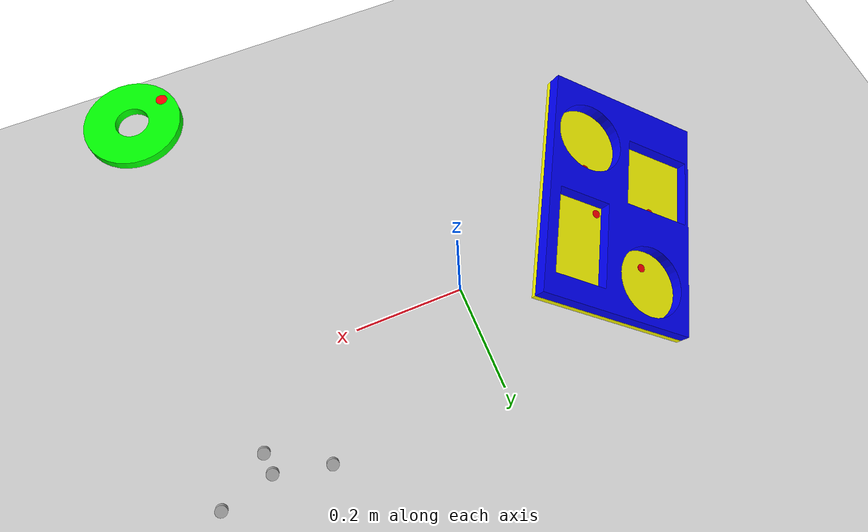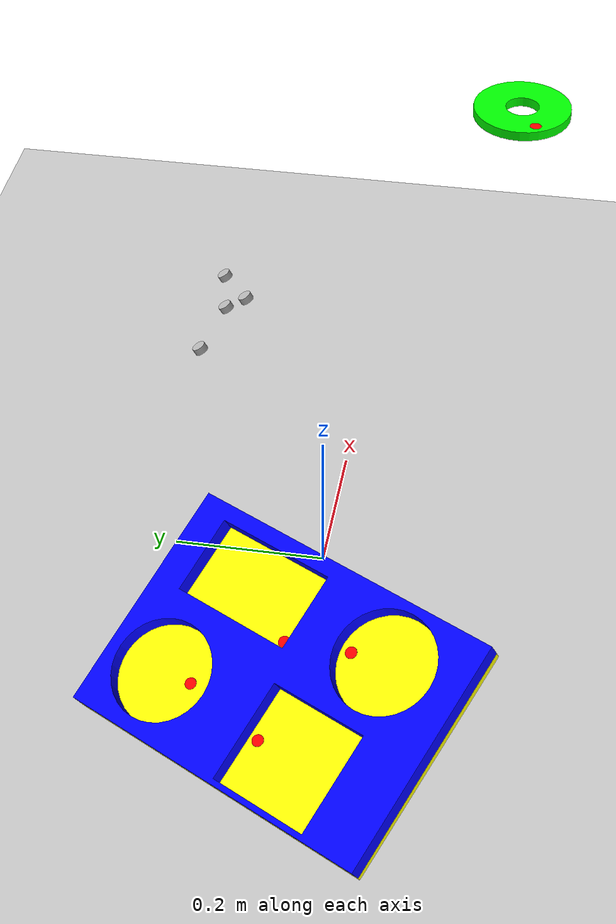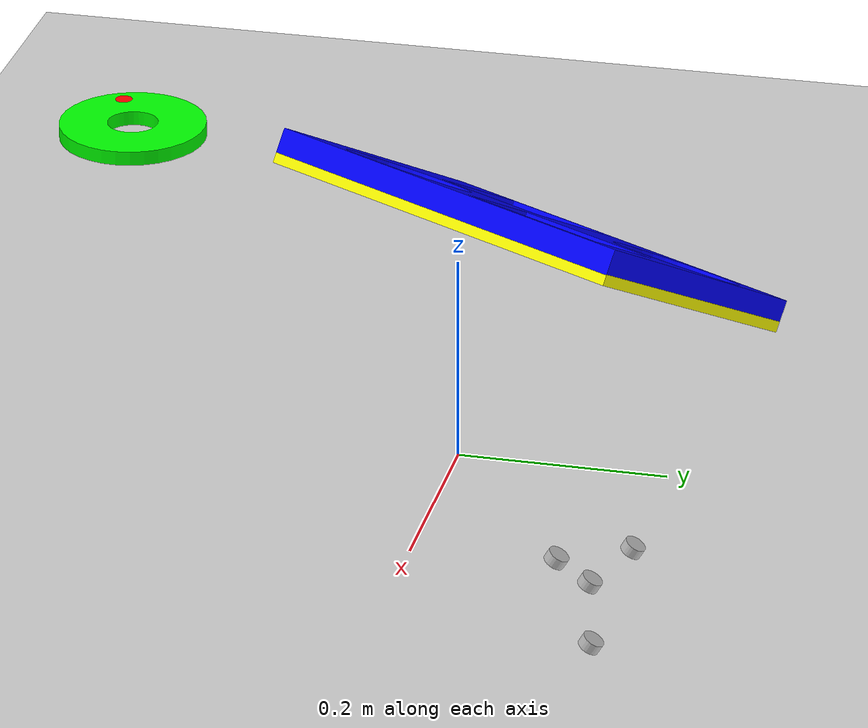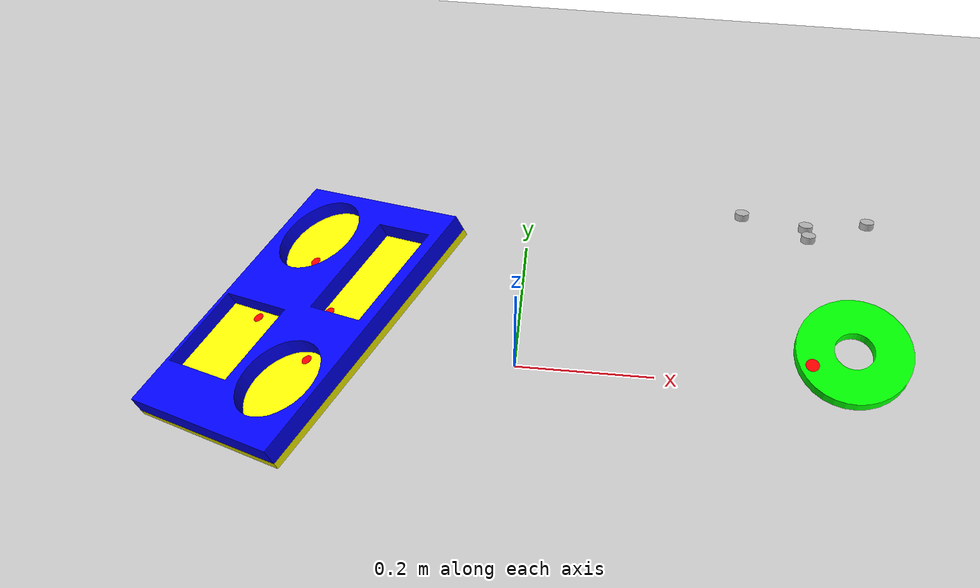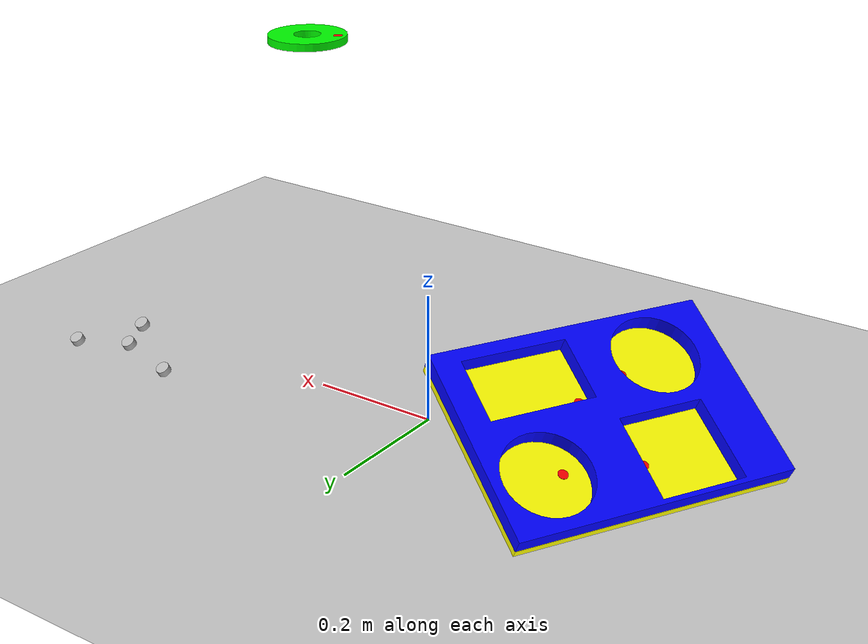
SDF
<?xml version="1.0" ?>
<sdf version="1.6">
  <world name="default">
    <plugin name="slider_controller_simulator" filename="libslider_controller_simulator.so"/>
    <plugin name="ros_link_attacher_plugin" filename="libgazebo_ros_link_attacher.so"/>
    <include>
      <uri>model://ground_plane</uri>
    </include>

    <include>
      <uri>model://sun</uri>
    </include>
    <include>
      <uri>model://EmptyPuzzle</uri>
      <pose>-0.3 0 0.09 0 -0.5 -0.5 </pose>
    </include>
    <include>
      <uri>model://CapacitiveSensor</uri>
      <name>lidar/0</name>
      <pose>0.4 0.2 0.08 -0.5253 0 0 </pose>
    </include>
    <include>
      <uri>model://CapacitiveSensor</uri>
      <name>lidar/1</name>
      <pose>0.4 0.17 0.1 -0.5253 0 0 </pose>
    </include>
    <include>
      <uri>model://CapacitiveSensor</uri>
      <name>lidar/2</name>
      <pose>0.31 0.22 0.07 -0.5253 0 0 </pose>
    </include>
    <include>
      <uri>model://CapacitiveSensor</uri>
      <name>lidar/3</name>
      <pose>0.49 0.22 0.07 -0.5253 0 0 </pose>
    </include>
    <include>
      <uri>model://Circle2</uri>
      <name>Circle2</name>
      <pose>0.38 -0.2 0.48 0 0 2.0</pose>
    </include>
    <physics type='ode'>
      <max_step_size>0.005</max_step_size>
      <real_time_factor>1</real_time_factor>
      <real_time_update_rate>200</real_time_update_rate>
    </physics>
    <gravity>0 0 -9.81</gravity>

  </world>
</sdf>

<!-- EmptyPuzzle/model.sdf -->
<sdf version='1.6'>
  <model name='EmptyPuzzle'>
    <link name='EmptyPuzzle'>
      <inertial>
        <mass>1</mass>
        <inertia>
          <ixx>0.166667</ixx>
          <ixy>0</ixy>
          <ixz>0</ixz>
          <iyy>0.166667</iyy>
          <iyz>0</iyz>
          <izz>0.166667</izz>
        </inertia>
        <pose frame=''>0 0 0 0 -0 0</pose>
      </inertial>
      <pose frame=''>0 0 0.011 0 -0.01 0</pose>
      <gravity>1</gravity>
      <self_collide>0</self_collide>
      <kinematic>0</kinematic>
      <enable_wind>0</enable_wind>
      <visual name='visual'>
        <pose frame=''>0 0 0 0 0 -1.57</pose>
        <geometry>
          <mesh>
            <uri>model://EmptyPuzzle/EmptyPuzzle.stl</uri>
            <scale>1.01 1.01 1.01</scale>
          </mesh>
        </geometry>
        <material>
          <lighting>1</lighting>
          <script>
            <uri>file://media/materials/scripts/gazebo.material</uri>
            <name>Gazebo/Grey</name>
          </script>
          <ambient>0 0 1 1</ambient>
          <shader type='vertex'>
            <normal_map>__default__</normal_map>
          </shader>
          <diffuse>0.7 0.7 0.7 1</diffuse>
          <specular>0.01 0.01 0.01 1</specular>
          <emissive>0 0 0 1</emissive>
        </material>
        <transparency>0</transparency>
        <cast_shadows>1</cast_shadows>
      </visual>
      <collision name='collision'>
        <laser_retro>0</laser_retro>
        <max_contacts>10</max_contacts>
        <pose frame=''>0 0 0 0 0 -1.57</pose>
        <geometry>
          <mesh>
            <uri>/home/martijn/School/Afstuderen/thuis-werken/catkin_ws/src/simulation/stl/EmptyPuzzle.stl</uri>
            <scale>1.01 1.01 1.01</scale>
          </mesh>
        </geometry>
        <surface>
          <friction>
            <ode>
              <mu>1</mu>
              <mu2>1</mu2>
              <fdir1>0 0 0</fdir1>
              <slip1>0</slip1>
              <slip2>0</slip2>
            </ode>
            <torsional>
              <coefficient>1</coefficient>
              <patch_radius>0</patch_radius>
              <surface_radius>0</surface_radius>
              <use_patch_radius>1</use_patch_radius>
              <ode>
                <slip>0</slip>
              </ode>
            </torsional>
          </friction>
          <bounce>
            <restitution_coefficient>0</restitution_coefficient>
            <threshold>1e+06</threshold>
          </bounce>
          <contact>
            <collide_without_contact>0</collide_without_contact>
            <collide_without_contact_bitmask>1</collide_without_contact_bitmask>
            <collide_bitmask>0x03</collide_bitmask>
            <ode>
              <soft_cfm>0</soft_cfm>
              <soft_erp>0.2</soft_erp>
              <kp>1e+13</kp>
              <kd>1</kd>
              <max_vel>0.01</max_vel>
              <min_depth>0</min_depth>
            </ode>
            <bullet>
              <split_impulse>1</split_impulse>
              <split_impulse_penetration_threshold>-0.01</split_impulse_penetration_threshold>
              <soft_cfm>0</soft_cfm>
              <soft_erp>0.2</soft_erp>
              <kp>1e+13</kp>
              <kd>1</kd>
            </bullet>
          </contact>
        </surface>
      </collision>
    </link>
    <link name='bottom_plate'>
      <inertial>
        <mass>1</mass>
        <inertia>
          <ixx>0.166667</ixx>
          <ixy>0</ixy>
          <ixz>0</ixz>
          <iyy>0.166667</iyy>
          <iyz>0</iyz>
          <izz>0.166667</izz>
        </inertia>
        <pose frame=''>0 0 0 0 -0 0</pose>
      </inertial>
      <pose frame=''>0 0 0 0 0 -1.57</pose>
      <gravity>1</gravity>
      <self_collide>0</self_collide>
      <kinematic>0</kinematic>
      <enable_wind>0</enable_wind>
      <visual name='visual'>
        <pose frame=''>0 0 -0.005 0 0 0</pose>
        <geometry>
          <box>
            <size>0.4242 0.30 0.011</size>
          </box>
        </geometry>
        <material>
          <lighting>1</lighting>
          <script>
            <uri>file://media/materials/scripts/gazebo.material</uri>
            <name>Gazebo/Grey</name>
          </script>
          <shader type='vertex'>
            <normal_map>__default__</normal_map>
          </shader>
          <ambient>1 1 0 1</ambient>
          <diffuse>0.7 0.7 0.7 1</diffuse>
          <specular>0.01 0.01 0.01 1</specular>
          <emissive>0 0 0 1</emissive>
        </material>
        <transparency>0</transparency>
        <cast_shadows>1</cast_shadows>
      </visual>
      <collision name='collision'>
        <laser_retro>0</laser_retro>
        <max_contacts>10</max_contacts>
        <pose frame=''>0 0 -0.005 0 0 0</pose>
        <geometry>
          <box>
            <size>0.4242 0.30 0.011</size>
          </box>
        </geometry>
        <surface>
          <friction>
            <ode>
              <mu>1</mu>
              <mu2>1</mu2>
              <fdir1>0 0 0</fdir1>
              <slip1>0</slip1>
              <slip2>0</slip2>
            </ode>
            <torsional>
              <coefficient>1</coefficient>
              <patch_radius>0</patch_radius>
              <surface_radius>0</surface_radius>
              <use_patch_radius>1</use_patch_radius>
              <ode>
                <slip>0</slip>
              </ode>
            </torsional>
          </friction>
          <bounce>
            <restitution_coefficient>0</restitution_coefficient>
            <threshold>1e+06</threshold>
          </bounce>
          <contact>
            <collide_without_contact>0</collide_without_contact>
            <collide_without_contact_bitmask>1</collide_without_contact_bitmask>
            <collide_bitmask>0x03</collide_bitmask>
            <ode>
              <soft_cfm>0</soft_cfm>
              <soft_erp>0.2</soft_erp>
              <kp>1e+13</kp>
              <kd>1</kd>
              <max_vel>0.01</max_vel>
              <min_depth>0</min_depth>
            </ode>
            <bullet>
              <split_impulse>1</split_impulse>
              <split_impulse_penetration_threshold>-0.01</split_impulse_penetration_threshold>
              <soft_cfm>0</soft_cfm>
              <soft_erp>0.2</soft_erp>
              <kp>1e+13</kp>
              <kd>1</kd>
            </bullet>
          </contact>
        </surface>
      </collision>
    </link>
    <include>
      <uri>model://InductiveSensor1</uri>
      <pose>0.039 0.0245 -0.0001 0 -1.57 0</pose>
    </include>
    <include>
      <uri>model://InductiveSensor2</uri>
      <pose>-0.0610 0.099 -0.0001 0 -1.57 0</pose>
    </include>
    <include>
      <uri>model://InductiveSensor3</uri>
      <pose>0.0675 -0.0571 -0.0001 0 -1.57 0</pose>
    </include>
    <include>
      <uri>model://InductiveSensor4</uri>
      <pose>-0.077265 -0.017 -0.0001 0 -1.57 0</pose>
    </include>

    <joint name='EmptyPuzzle_JOINT_0' type='fixed'>
      <parent>EmptyPuzzle</parent>
      <child>bottom_plate</child>
      <pose frame=''>0 0 0 0 -0 0</pose>
    </joint>
    <joint name='InductiveSensor5_to_puzzle' type='fixed'>
      <parent>InductiveSensor5::link</parent>
      <child>EmptyPuzzle</child>
      <pose frame=''>0 0 0 0 0 0</pose>
    </joint>
    <joint name='InductiveSensor1_to_puzzle' type='fixed'>
      <parent>InductiveSensor0::link</parent>
      <child>EmptyPuzzle</child>
      <pose frame=''>0 0 0 0 0 0</pose>
    </joint>
    <joint name='InductiveSensor2_to_puzzle' type='fixed'>
      <parent>InductiveSensor0::link</parent>
      <child>EmptyPuzzle</child>
      <pose frame=''>0 0 0 0 0 0</pose>
    </joint>
    <joint name='InductiveSensor3_to_puzzle' type='fixed'>
      <parent>InductiveSensor0::link</parent>
      <child>EmptyPuzzle</child>
      <pose frame=''>0 0 0 0 0 0</pose>
    </joint>
    <static>0</static>
    <allow_auto_disable>1</allow_auto_disable>
  </model>
</sdf>

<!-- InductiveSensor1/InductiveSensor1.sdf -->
<sdf version="1.6">
    <model name='sensor/1'>
        <pose>0.0 0.0 0 0 0 0</pose>
        <static>true</static>
        <link name="link">
            <inertial>
                <mass>0</mass>
                <inertia>
                    <ixx>0.166667</ixx>
                    <ixy>0</ixy>
                    <ixz>0</ixz>
                    <iyy>0.166667</iyy>
                    <iyz>0</iyz>
                    <izz>0.166667</izz>
                </inertia>
                <pose frame=''>0 0 0 0 0 0</pose>
            </inertial>
            <gravity>0</gravity>
            <self_collide>0</self_collide>
            <kinematic>0</kinematic>
            <enable_wind>0</enable_wind>
            <visual name='visual'>
                <pose frame=''>0 0 0 0 1.57 0</pose>
                <geometry>
                    <cylinder>
                        <radius>0.0075</radius>
                        <length>0.002</length>
                    </cylinder>
                </geometry>
                <material>
                    <lighting>1</lighting>
                    <script>
                        <uri>file://media/materials/scripts/gazebo.material</uri>
                        <name>Gazebo/Grey</name>
                    </script>
                    <shader type='vertex'>
                        <normal_map>__default__</normal_map>
                    </shader>
                    <ambient>1 0 0 1</ambient>
                    <diffuse>0.7 0.7 0.7 1</diffuse>
                    <specular>0.01 0.01 0.01 1</specular>
                    <emissive>0 0 0 1</emissive>
                </material>
                <transparency>0</transparency>
                <cast_shadows>1</cast_shadows>
            </visual>
            <sensor name="webcam" type="camera">
                <update_rate>10.0</update_rate>
                <plugin name="webcam_plugin" filename="libgazebo_ros_camera.so">
                    <imageTopicName>image_raw</imageTopicName>
                    <robotNamespace>camera_plugin</robotNamespace>
                    <cameraName>webcam1</cameraName>
                </plugin>
                <camera>
                    <save enabled="false">
                        <path>/tmp/camera_save_tutorial</path>
                    </save>
                    <horizontal_fov>0.85</horizontal_fov>
                    <image>
                        <width>10</width>
                        <height>10</height>
                        <format>R8G8B8</format>
                    </image>
                    <clip>
                        <near>0.00001</near>
                        <far>0.1</far>
                    </clip>
                </camera>
                <visualize>false</visualize>
                <always_on>1</always_on>
            </sensor>
        </link>
    </model>
</sdf>

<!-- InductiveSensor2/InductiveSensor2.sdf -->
<sdf version="1.6">
    <model name='sensor/2'>
        <pose>0.0 0.0 0.5 0 0 0</pose>
        <static>true</static>
        <link name="link">
            <inertial>
                <mass>0</mass>
                <inertia>
                    <ixx>0.166667</ixx>
                    <ixy>0</ixy>
                    <ixz>0</ixz>
                    <iyy>0.166667</iyy>
                    <iyz>0</iyz>
                    <izz>0.166667</izz>
                </inertia>
                <pose frame=''>0 0 0 0 0 0</pose>
            </inertial>
            <gravity>0</gravity>
            <self_collide>0</self_collide>
            <kinematic>0</kinematic>
            <enable_wind>0</enable_wind>
            <visual name='visual'>
                <pose frame=''>0 0 0 0 1.57 0</pose>
                <geometry>
                    <cylinder>
                        <radius>0.0075</radius>
                        <length>0.002</length>
                    </cylinder>
                </geometry>
                <material>
                    <lighting>1</lighting>
                    <script>
                        <uri>file://media/materials/scripts/gazebo.material</uri>
                        <name>Gazebo/Grey</name>
                    </script>
                    <shader type='vertex'>
                        <normal_map>__default__</normal_map>
                    </shader>
                    <ambient>1 0 0 1</ambient>
                    <diffuse>0.7 0.7 0.7 1</diffuse>
                    <specular>0.01 0.01 0.01 1</specular>
                    <emissive>0 0 0 1</emissive>
                </material>
                <transparency>0</transparency>
                <cast_shadows>1</cast_shadows>
            </visual>
            <sensor name="webcam" type="camera">
                <update_rate>100.0</update_rate>
                <plugin name="webcam_plugin" filename="libgazebo_ros_camera.so">
                    <imageTopicName>image_raw</imageTopicName>
                    <robotNamespace>camera_plugin</robotNamespace>
                    <cameraName>webcam2</cameraName>
                </plugin>
                <camera>
                    <save enabled="false">
                        <path>/tmp/camera_save_tutorial</path>
                    </save>
                    <horizontal_fov>0.85</horizontal_fov>
                    <image>
                        <width>10</width>
                        <height>10</height>
                        <format>R8G8B8</format>
                    </image>
                    <clip>
                        <near>0.00001</near>
                        <far>0.1</far>
                    </clip>
                </camera>
                <visualize>false</visualize>
                <always_on>1</always_on>
            </sensor>
        </link>
    </model>
</sdf>

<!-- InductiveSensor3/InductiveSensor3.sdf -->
<sdf version="1.6">
    <model name='sensor/3'>
        <pose>0.0 0.0 0.5 0 0 0</pose>
        <static>true</static>
        <link name="link">
            <inertial>
                <mass>0</mass>
                <inertia>
                    <ixx>0.166667</ixx>
                    <ixy>0</ixy>
                    <ixz>0</ixz>
                    <iyy>0.166667</iyy>
                    <iyz>0</iyz>
                    <izz>0.166667</izz>
                </inertia>
                <pose frame=''>0 0 0 0 0 0</pose>
            </inertial>
            <gravity>0</gravity>
            <self_collide>0</self_collide>
            <kinematic>0</kinematic>
            <enable_wind>0</enable_wind>
            <visual name='visual'>
                <pose frame=''>0 0 0 0 1.57 0</pose>
                <geometry>
                    <cylinder>
                        <radius>0.0075</radius>
                        <length>0.002</length>
                    </cylinder>
                </geometry>
                <material>
                    <lighting>1</lighting>
                    <script>
                        <uri>file://media/materials/scripts/gazebo.material</uri>
                        <name>Gazebo/Grey</name>
                    </script>
                    <shader type='vertex'>
                        <normal_map>__default__</normal_map>
                    </shader>
                    <ambient>1 0 0 1</ambient>
                    <diffuse>0.7 0.7 0.7 1</diffuse>
                    <specular>0.01 0.01 0.01 1</specular>
                    <emissive>0 0 0 1</emissive>
                </material>
                <transparency>0</transparency>
                <cast_shadows>1</cast_shadows>
            </visual>
            <sensor name="webcam" type="camera">
                <update_rate>100.0</update_rate>
                <plugin name="webcam_plugin" filename="libgazebo_ros_camera.so">
                    <imageTopicName>image_raw</imageTopicName>
                    <robotNamespace>camera_plugin</robotNamespace>
                    <cameraName>webcam3</cameraName>
                </plugin>
                <camera>
                    <save enabled="false">
                        <path>/tmp/camera_save_tutorial</path>
                    </save>
                    <horizontal_fov>0.3</horizontal_fov>
                    <image>
                        <width>10</width>
                        <height>10</height>
                        <format>R8G8B8</format>
                    </image>
                    <clip>
                        <near>0.00001</near>
                        <far>0.1</far>
                    </clip>
                </camera>
                <visualize>false</visualize>
                <always_on>1</always_on>
            </sensor>
        </link>
    </model>
</sdf>

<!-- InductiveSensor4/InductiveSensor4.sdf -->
<sdf version="1.6">
    <model name='sensor/4'>
        <pose>0.0 0.0 0.5 0 0 0</pose>
        <static>true</static>
        <link name="link">
            <inertial>
                <mass>0</mass>
                <inertia>
                    <ixx>0.166667</ixx>
                    <ixy>0</ixy>
                    <ixz>0</ixz>
                    <iyy>0.166667</iyy>
                    <iyz>0</iyz>
                    <izz>0.166667</izz>
                </inertia>
                <pose frame=''>0 0 0 0 0 0</pose>
            </inertial>
            <gravity>0</gravity>
            <self_collide>0</self_collide>
            <kinematic>0</kinematic>
            <enable_wind>0</enable_wind>
            <visual name='visual'>
                <pose frame=''>0 0 0 0 1.57 0</pose>
                <geometry>
                    <cylinder>
                        <radius>0.0075</radius>
                        <length>0.002</length>
                    </cylinder>
                </geometry>
                <material>
                    <lighting>1</lighting>
                    <script>
                        <uri>file://media/materials/scripts/gazebo.material</uri>
                        <name>Gazebo/Grey</name>
                    </script>
                    <shader type='vertex'>
                        <normal_map>__default__</normal_map>
                    </shader>
                    <ambient>1 0 0 1</ambient>
                    <diffuse>0.7 0.7 0.7 1</diffuse>
                    <specular>0.01 0.01 0.01 1</specular>
                    <emissive>0 0 0 1</emissive>
                </material>
                <transparency>0</transparency>
                <cast_shadows>1</cast_shadows>
            </visual>
            <sensor name="webcam" type="camera">
                <update_rate>10.0</update_rate>
                <plugin name="webcam_plugin" filename="libgazebo_ros_camera.so">
                    <imageTopicName>image_raw</imageTopicName>
                    <robotNamespace>camera_plugin</robotNamespace>
                    <cameraName>webcam4</cameraName>
                </plugin>
                <camera>
                    <save enabled="false">
                        <path>/tmp/camera_save_tutorial</path>
                    </save>
                    <horizontal_fov>0.85</horizontal_fov>
                    <image>
                        <width>10</width>
                        <height>10</height>
                        <format>R8G8B8</format>
                    </image>
                    <clip>
                        <near>0.00001</near>
                        <far>0.1</far>
                    </clip>
                </camera>
                <visualize>false</visualize>
                <always_on>1</always_on>
            </sensor>
        </link>
    </model>
</sdf>

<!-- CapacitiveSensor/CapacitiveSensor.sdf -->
<sdf version="1.6">
    <model name="lidar/0">
        <static>true</static>
        <link name="lidar_link">
            <pose>0.0 0 0.02 0 0 0</pose>
            <visual name="base_visual">
                <geometry>
                    <cylinder>
                        <radius>0.01</radius>
                        <length>0.01</length>
                    </cylinder>
                </geometry>
            </visual>

            <sensor type="ray" name="sensor">
                <pose>0 0 0.03 3.1415 0 0</pose>
                <visualize>false</visualize>
                <update_rate>10</update_rate>
                <ray>
                    <scan>
                        <vertical>
                            <samples>3</samples>
                            <resolution>1</resolution>
                            <min_angle>1.56079632679</min_angle>
                            <max_angle>1.58079632679</max_angle>
                        </vertical>
                        <horizontal>
                            <samples>1</samples>
                            <resolution>1</resolution>
                            <min_angle>0</min_angle>
                            <max_angle>-0.1</max_angle>
                        </horizontal>
                    </scan>
                    <range>
                        <min>-0.01</min>
                        <max>0.04</max>
                        <resolution>0.0001</resolution>
                    </range>
                </ray>
                <plugin name="lidar_control" filename="libsim_lidar_plugin.so">
                    <lidardatatopicName>/sensor/lidar</lidardatatopicName>
                    <topicName>/sensor/lidar/scan</topicName>
                    <frameName>laser</frameName>
                </plugin>
            </sensor>
        </link>
    </model>
</sdf>

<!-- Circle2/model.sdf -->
<sdf version='1.6'>
  <model name='Circle2'>
    <link name='circle_2_link_0'>
      <inertial>
        <mass>10</mass>
        <inertia>
          <ixx>0.014604168877626544</ixx>
          <ixy>0</ixy>
          <ixz>0</ixz>
          <iyy>0.014604168877626544</iyy>
          <iyz>0</iyz>
          <izz>0.028166671057542336</izz>
        </inertia>
        <pose frame=''>0 0 0 0 0 0</pose>
      </inertial>
      <gravity>1</gravity>
      <self_collide>0</self_collide>
      <kinematic>0</kinematic>
      <enable_wind>0</enable_wind>
      <visual name='visual'>
        <pose frame=''>0 0 0 0 0 0</pose>
        <geometry>
          <mesh>
            <uri>model://Circle2/Circle2.stl</uri>
            <scale>0.98 0.98 0.5</scale>
          </mesh>
        </geometry>
        <material>
          <lighting>1</lighting>
          <script>
            <uri>file://media/materials/scripts/gazebo.material</uri>
            <name>Gazebo/Grey</name>
          </script>
          <shader type='vertex'>
            <normal_map>__default__</normal_map>
          </shader>
          <ambient>0 1 0 1</ambient>
          <diffuse>0.7 0.7 0.7 1</diffuse>
          <specular>0.01 0.01 0.01 1</specular>
          <emissive>0 0 0 1</emissive>
        </material>
        <transparency>0</transparency>
        <cast_shadows>1</cast_shadows>
      </visual>
      <collision name='collision'>
        <laser_retro>0</laser_retro>
        <max_contacts>10</max_contacts>
        <pose frame=''>0 0 0 0 0 0</pose>
        <geometry>
          <mesh>
            <uri>model://Circle2/Circle2.stl</uri>
            <scale>0.98 0.98 0.5</scale>
          </mesh>
        </geometry>
        <surface>
          <friction>
            <ode>
              <mu>0.1</mu>
              <fdir1>0 0 0</fdir1>
              <slip1>0</slip1>
              <slip2>0</slip2>
            </ode>
            <torsional>
              <coefficient>1</coefficient>
              <patch_radius>0</patch_radius>
              <surface_radius>0</surface_radius>
              <use_patch_radius>1</use_patch_radius>
              <ode>
                <slip>0</slip>
              </ode>
            </torsional>
          </friction>
          <bounce>
            <restitution_coefficient>0</restitution_coefficient>
            <threshold>1e+06</threshold>
          </bounce>
          <contact>
            <collide_without_contact>0</collide_without_contact>
            <collide_without_contact_bitmask>1</collide_without_contact_bitmask>
            <collide_bitmask>0x02</collide_bitmask>
            <ode>
              <soft_cfm>0</soft_cfm>
              <soft_erp>0.2</soft_erp>
              <kp>1e+13</kp>
              <kd>1</kd>
              <max_vel>0.01</max_vel>
              <min_depth>0</min_depth>
            </ode>
            <bullet>
              <split_impulse>1</split_impulse>
              <split_impulse_penetration_threshold>-0.01</split_impulse_penetration_threshold>
              <soft_cfm>0</soft_cfm>
              <soft_erp>0.2</soft_erp>
              <kp>1e+13</kp>
              <kd>1</kd>
            </bullet>
          </contact>
        </surface>
      </collision>
    </link>
    <link name='circle_2_link_1'>
      <inertial>
        <mass>1e-05</mass>
        <inertia>
          <ixx>0.145833</ixx>
          <ixy>0</ixy>
          <ixz>0</ixz>
          <iyy>0.145833</iyy>
          <iyz>0</iyz>
          <izz>0.125</izz>
        </inertia>
        <pose frame=''>0 0 0 0 0 0</pose>
      </inertial>
      <gravity>1</gravity>
      <self_collide>0</self_collide>
      <kinematic>0</kinematic>
      <enable_wind>0</enable_wind>
      <visual name='visual'>
        <pose frame=''>0 0.05 0 0 0 0</pose>
        <geometry>
          <cylinder>
            <radius>0.0075</radius>
            <length>0.012551</length>
          </cylinder>
        </geometry>
        <material>
          <lighting>1</lighting>
          <script>
            <uri>file://media/materials/scripts/gazebo.material</uri>
            <name>Gazebo/Grey</name>
          </script>
          <shader type='vertex'>
            <normal_map>__default__</normal_map>
          </shader>
          <ambient>1 0 0 1</ambient>
          <diffuse>0.7 0.7 0.7 1</diffuse>
          <specular>0.01 0.01 0.01 1</specular>
          <emissive>0 0 0 1</emissive>
        </material>
        <transparency>0</transparency>
        <cast_shadows>1</cast_shadows>
      </visual>
    </link>
    <joint name='circle_2_link_0_JOINT_0' type='fixed'>
      <parent>circle_2_link_0</parent>
      <child>circle_2_link_1</child>
      <pose frame=''>0 0 0 0 0 0</pose>
      <physics>
        <ode>
          <limit>
            <cfm>0</cfm>
            <erp>0.2</erp>
          </limit>
          <suspension>
            <cfm>0</cfm>
            <erp>0.2</erp>
          </suspension>
        </ode>
      </physics>
    </joint>
    <static>0</static>
    <allow_auto_disable>1</allow_auto_disable>
  </model>
</sdf>
